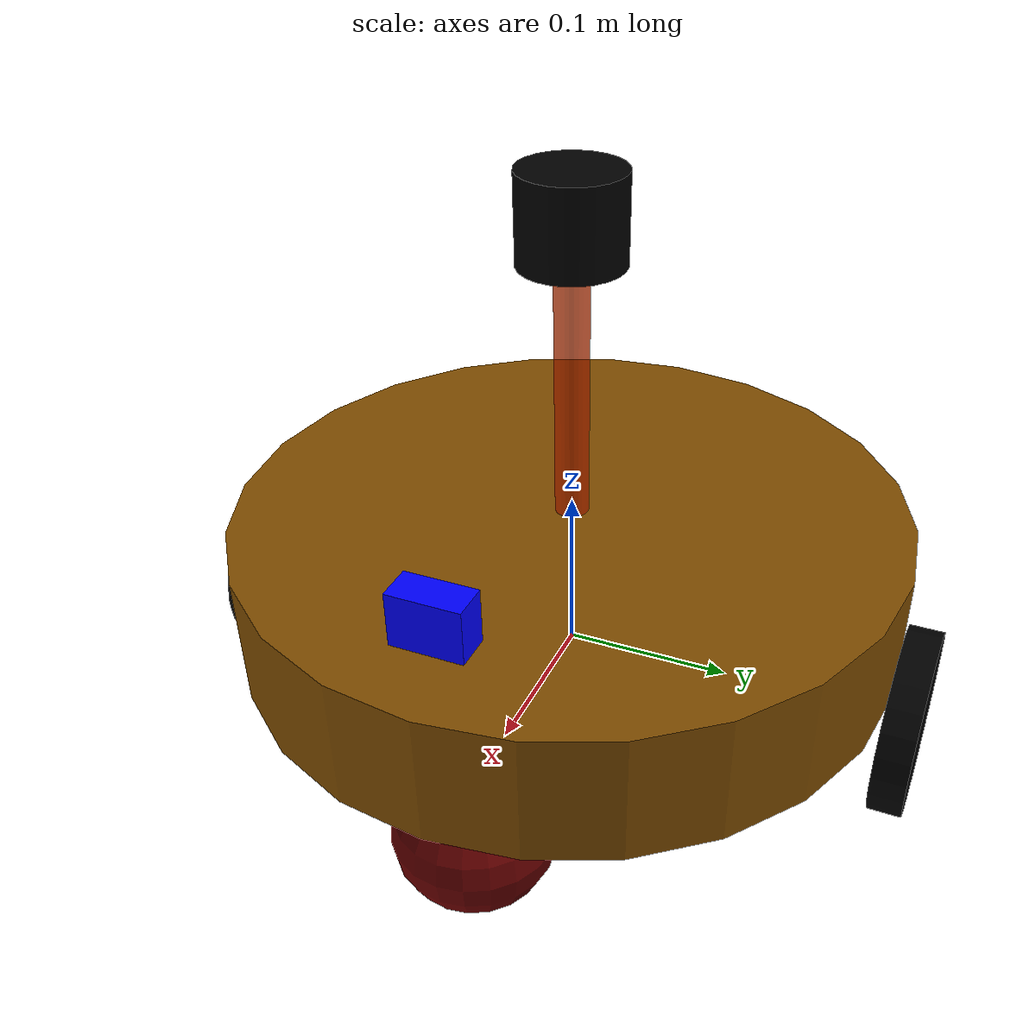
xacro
<robot name="car_with_camera_lidar" xmlns:xacro="http://www.ros.rog/wiki/xacro" >
    <xacro:include filename="head.xacro" />
    <xacro:include filename="mycar.urdf.xacro" />
    <xacro:include filename="camera.urdf.xacro" />
    <xacro:include filename="lidar.urdf.xacro" />
    <xacro:include filename="move.xacro" />
</robot>

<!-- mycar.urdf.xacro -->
<robot name="my_car" xmlns:xacro="http://www.ros.org/wiki/xacro" >
    <xacro:property name="PI" value="3.14" />

    <material name="black">
        <color rgba="0 0 0 1" />
    </material>

    <xacro:property name="base_footprint_radius" value="0.0001" />
    <xacro:property name="base_link_radius" value="0.2" />
    <xacro:property name="base_link_length" value="0.08" />
    <xacro:property name="earth_space" value="0.015" />

    <link name="base_footprint">
        <visual>
            <geometry>
                <sphere radius="${base_footprint_radius}" />
            </geometry>
        </visual>
    </link>

    <link name="base_link" >
        <visual>
            <geometry>
                <cylinder radius="${base_link_radius}" length="${base_link_length}" />
            </geometry>
            <origin xyz="0 0 0" rpy="0 0 0" />
            <material name="yellow">
                <color rgba="0.5 0.3 0 1" />
            </material>
        </visual>
    </link>

    <joint name="baselink2footprint" type="fixed" >
        <parent link="base_footprint" />
        <child link="base_link" />
        <origin xyz="0 0 ${earth_space + base_link_length / 2}" />
    </joint>

    <xacro:property name="drive_radius" value="0.055" />
    <xacro:property name="drive_width" value="0.02" />

    <xacro:macro name="add_wheel" params="name direction" >
        <link name="${name}_wheel">
            <visual>
                <geometry>
                    <cylinder radius="${drive_radius}" length="${drive_width}" />
                </geometry>
                <material name="black" />
                <origin xyz="0 0 0" rpy="${direction * PI /2} 0 0" />
            </visual>
        </link>

        <joint name="${name}_wheel2baselink" type="continuous" >
            <parent link="base_link" />
            <child link="${name}_wheel" />
            <origin xyz="0 ${direction * (base_link_radius + drive_width / 2)} -${earth_space + base_link_length / 2}" rpy="0 0 0" />
            <axis xyz="0 1 0" />
        </joint>
    </xacro:macro>

    <xacro:add_wheel name="left" direction="1" />
    <xacro:add_wheel name="right" direction="-1" />

    <xacro:property name="support_wheel_radius" value="${(earth_space + base_link_length) / 2}" />

    <xacro:macro name="add_support" params="name flag">
        <link name="${name}_wheel">
            <visual>
                <geometry>
                    <sphere radius="${support_wheel_radius}" />
                </geometry>
                <material name="red">
                    <color rgba="0.4 0 0 1" />
                </material>
            </visual>
        </link>
        <joint name="${name}_wheel" type="continuous" >
            <parent link="base_link" />
            <child link="${name}_wheel" />
            <origin xyz="${flag * (base_link_radius - support_wheel_radius - 0.01)} 0 -${support_wheel_radius + base_link_length / 2}" />
            <axis xyz="1 1 1" />
        </joint>
    </xacro:macro>

    <xacro:add_support name="front" flag="1" />
    <xacro:add_support name="back" flag="-1" />
</robot>

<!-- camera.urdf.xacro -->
<robot name="mycamera" xmlns:xacro="https://www.ros.org/wiki/xacro" >
    <xacro:property name="camera_length" value="0.02" />
    <xacro:property name="camera_width" value="0.04" />
    <xacro:property name="camera_height" value="0.03" />
    <xacro:property name="camera_x" value="${base_link_radius - camera_length - 0.01}" />
    <xacro:property name="camera_y" value="0" />
    <xacro:property name="camera_z" value="${base_link_length}" />

    <link name="camera">
        <visual>
            <geometry>
                <box size="${camera_length} ${camera_width} ${camera_height}" />
            </geometry>
            <material name="blue" >
                <color rgba="0 0 1 1" />
            </material>
        </visual>
    </link>

    <joint name="camera2baselink" type="continuous" >
        <parent link="base_link" />
        <child link="camera" />
        <origin xyz="${camera_x} ${camera_y} ${camera_z}" />
        <axis xyz="0 0 1" />
    </joint>
</robot>

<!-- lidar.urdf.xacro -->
<robot name="mylidar" xmlns:xacro="http://www.ros.org/wiki/xacro" >
    <xacro:property name="support_length" value="0.15" />
    <xacro:property name="support_radius" value="0.01" />
    <xacro:property name="support_x" value="0.0" />
    <xacro:property name="support_y" value="0.0" />
    <xacro:property name="support_z" value="${base_link_length / 2 + support_length / 2}" />

    <link name="support">
        <visual>
            <geometry>
                <cylinder radius="${support_radius}" length="${support_length}" />
            </geometry>
            <origin xyz="0.0 0.0 0.0" rpy="0.0 0.0 0.0" />
            <material name="red">
                <color rgba="0.8 0.2 0.0 0.8" />
            </material>
        </visual>
    </link>

    <joint name="support2base_link" type="fixed">
        <parent link="base_link" />
        <child link="support" />
        <origin xyz="${support_x} ${support_y} ${support_z}" />
    </joint>

    <xacro:property name="laser_length" value="0.05" />
    <xacro:property name="laser_radius" value="0.03" />
    <xacro:property name="laser_x" value="0.0" />
    <xacro:property name="laser_y" value="0.0" />
    <xacro:property name="laser_z" value="${support_length / 2 + laser_length / 2}" />

    <link name="laser">
        <visual>
            <geometry>
                <cylinder radius="${laser_radius}" length="${laser_length}" />
            </geometry>
            <origin xyz="0.0 0.0 0.0" rpy="0.0 0.0 0.0" />
            <material name="black" />
        </visual>
    </link>

    <joint name="laser2support" type="fixed">
        <parent link="support" />
        <child link="laser" />
        <origin xyz="${laser_x} ${laser_y} ${laser_z}" />
    </joint>
</robot>
